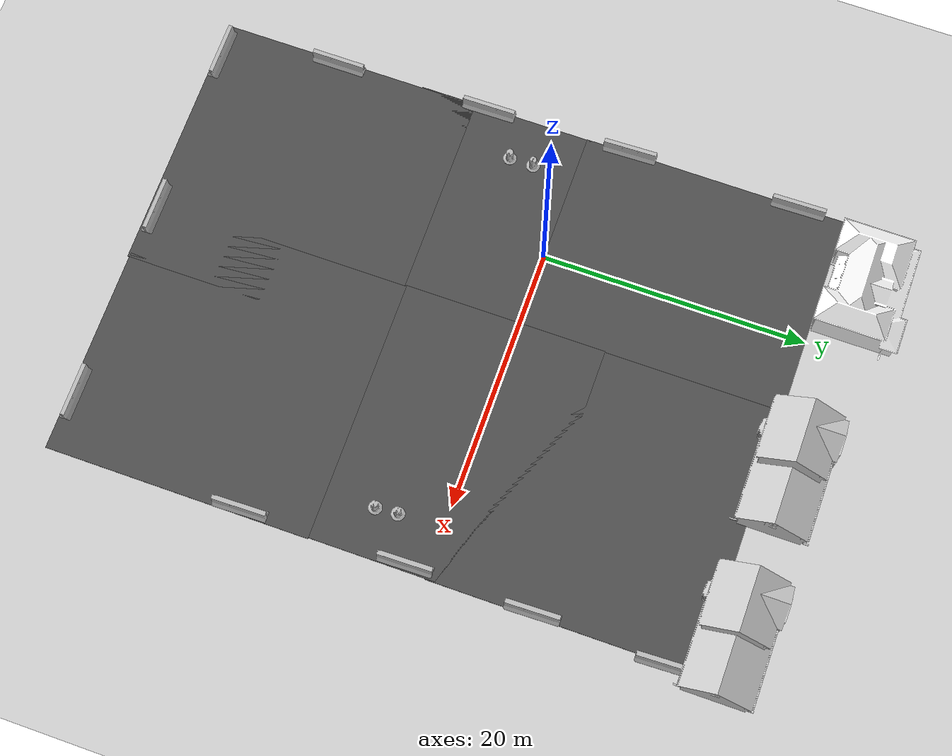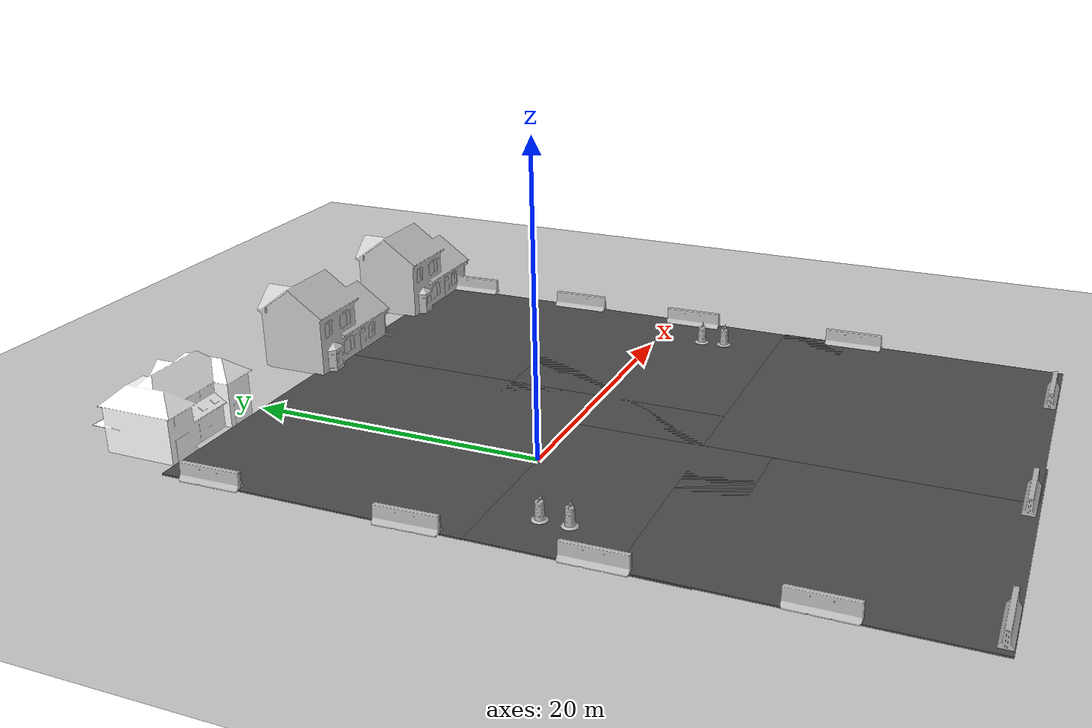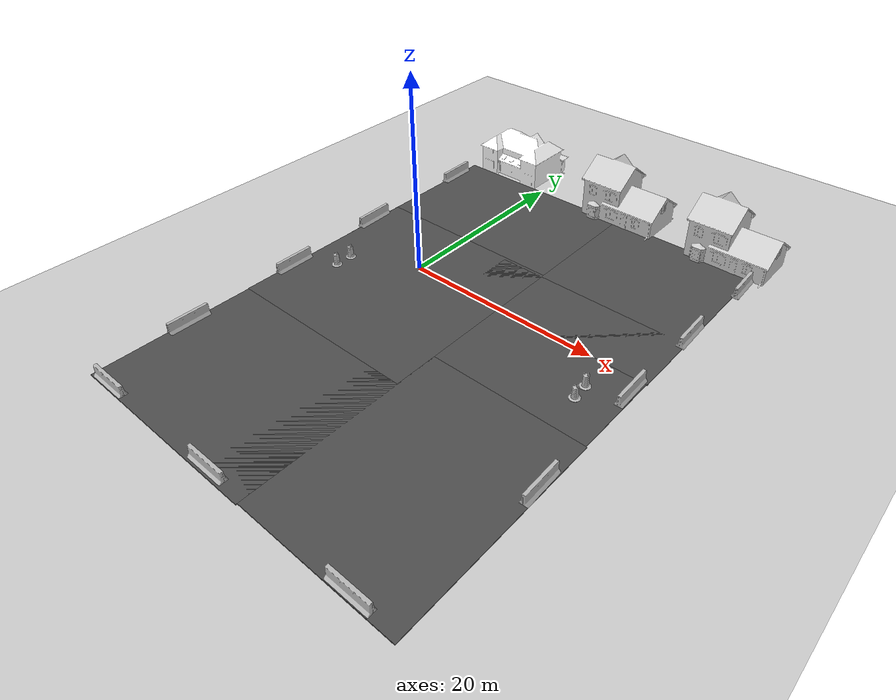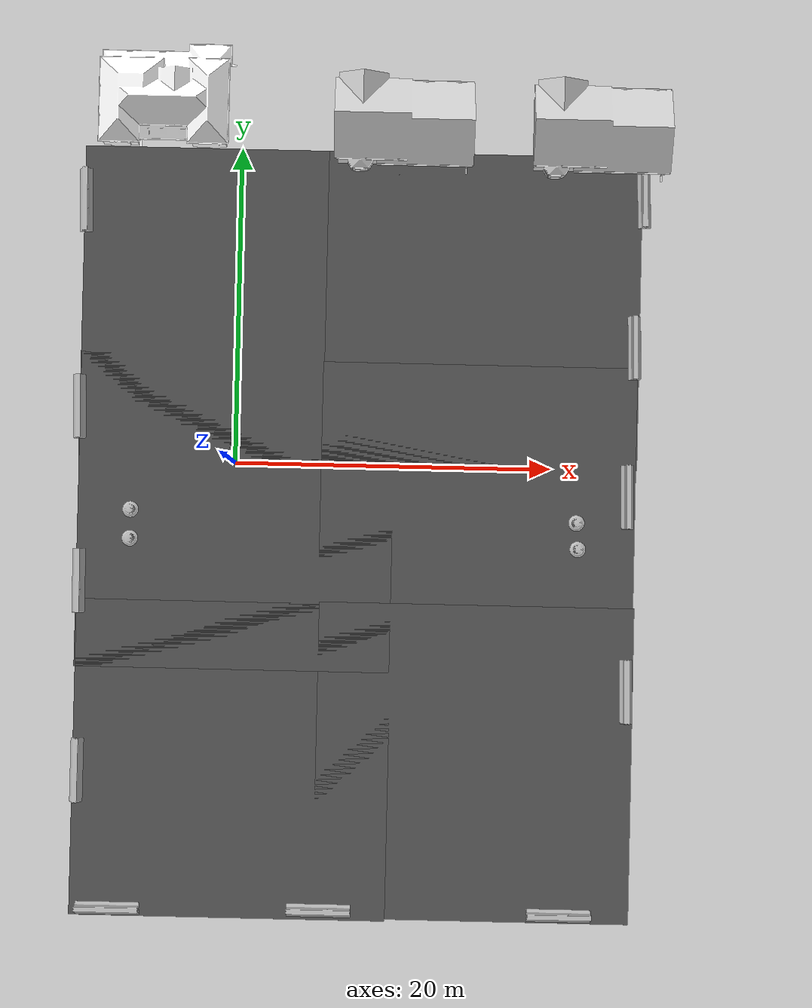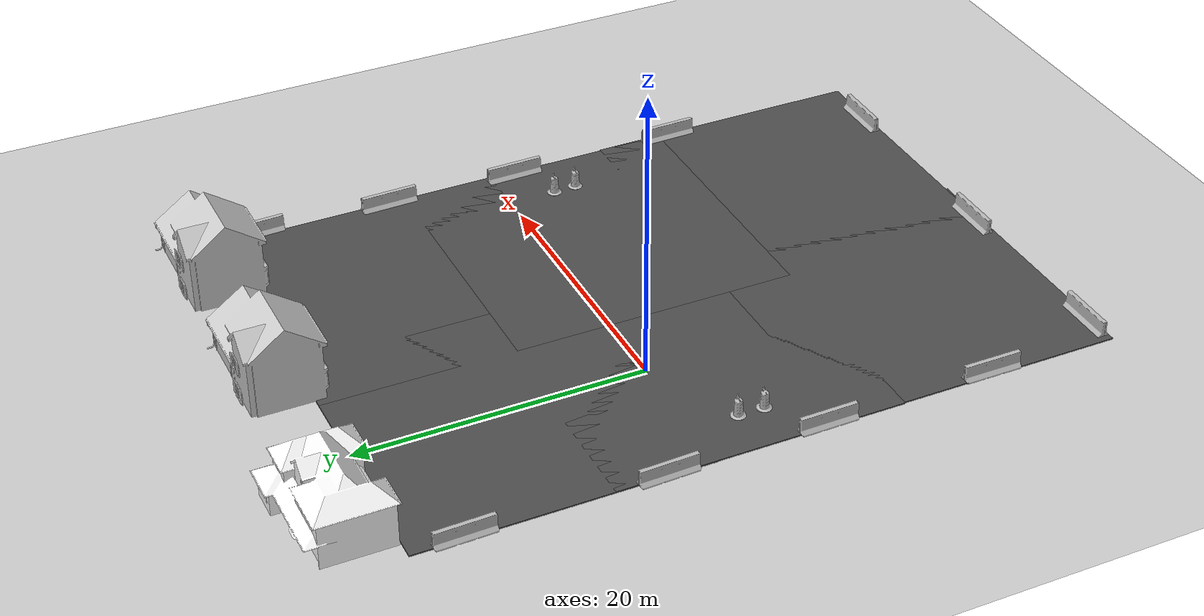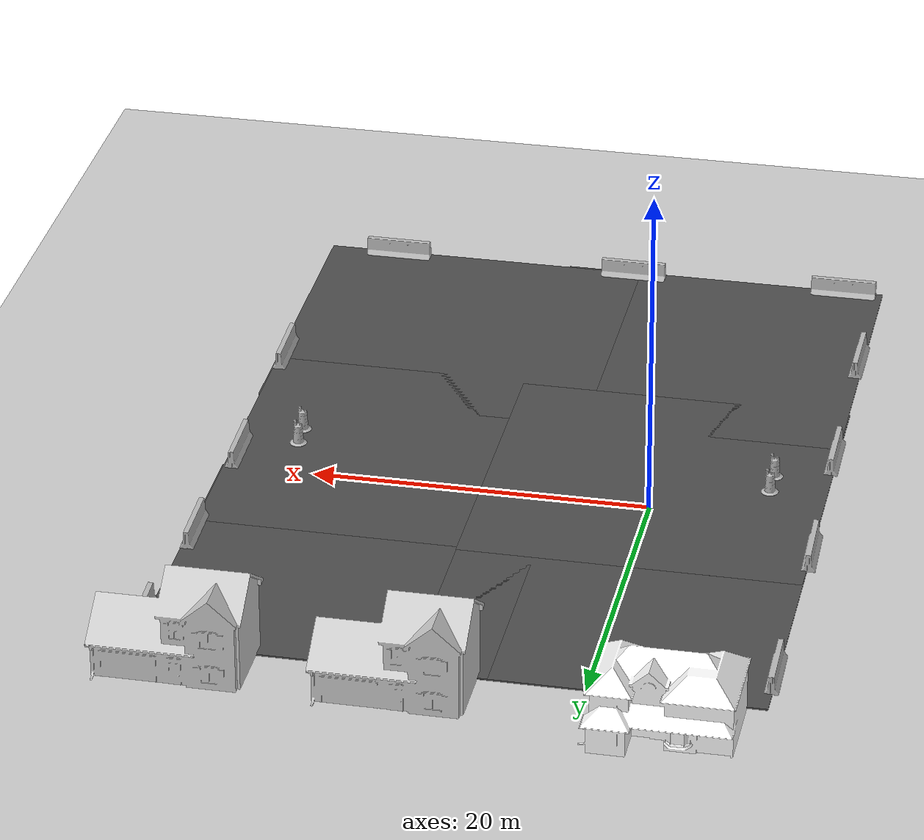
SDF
<sdf version="1.4">
 <world name="default">
  <model name="ground_plane">
   <static>1</static>
   <link name="link">
    <collision name="collision">
     <geometry><plane><normal>0 0 1</normal><size>100 100</size></plane></geometry>
     <surface><friction><ode><mu>100</mu><mu2>50</mu2></ode></friction></surface>
    </collision>
    <visual name="visual">
     <cast_shadows>0</cast_shadows>
     <geometry><plane><normal>0 0 1</normal><size>100 100</size></plane></geometry>
     <material>
      <script><uri>file://media/materials/scripts/gazebo.material</uri><name>Gazebo/Grey</name></script>
     </material>
    </visual>
    <velocity_decay><linear>0</linear><angular>0</angular></velocity_decay>
   </link>
  </model>
  <model name="asphalt_plane">
   <static>1</static>
   <link name="link">
    <collision name="collision"><geometry><box><size>20 20 0.1</size></box></geometry></collision>
    <visual name="visual">
     <cast_shadows>0</cast_shadows>
     <geometry><box><size>20 20 0.1</size></box></geometry>
     <material>
      <script>
       <uri>model://asphalt_plane/materials/scripts</uri>
       <uri>model://asphalt_plane/materials/textures</uri>
       <name>vrc/asphalt</name>
      </script>
     </material>
    </visual>
    <velocity_decay><linear>0</linear><angular>0</angular></velocity_decay>
   </link>
   <pose>0.030437 -3.13546 0 0 -0 0</pose>
  </model>
  <model name="jersey_barrier">
   <static>1</static>
   <link name="link">
    <visual name="visual">
     <geometry><mesh><uri>model://jersey_barrier/meshes/jersey_barrier.dae</uri></mesh></geometry>
    </visual>
    <collision name="upright">
     <pose>0 0 0.5715 0 -0 0</pose>
     <geometry><box><size>4.06542 0.3063 1.143</size></box></geometry>
    </collision>
    <collision name="base">
     <pose>0 0 0.032258 0 -0 0</pose>
     <geometry><box><size>4.06542 0.8107 0.064516</size></box></geometry>
    </collision>
    <collision name="base2">
     <pose>0 0 0.1 0 -0 0</pose>
     <geometry><box><size>4.06542 0.65 0.1</size></box></geometry>
    </collision>
    <collision name="base3">
     <pose>0 0 0.2 0 -0 0</pose>
     <geometry><box><size>4.06542 0.5 0.1</size></box></geometry>
    </collision>
    <collision name="left-angle">
     <pose>0 -0.224 0.2401 0.9 -0 0</pose>
     <geometry><box><size>4.06542 0.5 0.064516</size></box></geometry>
    </collision>
    <collision name="right-angle">
     <pose>0 0.224 0.2401 -0.9 0 0</pose>
     <geometry><box><size>4.06542 0.5 0.064516</size></box></geometry>
    </collision>
    <velocity_decay><linear>0</linear><angular>0</angular></velocity_decay>
   </link>
   <pose>21.0984 -28.2425 0 0 -0 0</pose>
  </model>
  <model name="jersey_barrier_0">
   <static>1</static>
   <link name="link">
    <visual name="visual">
     <geometry><mesh><uri>model://jersey_barrier/meshes/jersey_barrier.dae</uri></mesh></geometry>
    </visual>
    <collision name="upright">
     <pose>0 0 0.5715 0 -0 0</pose>
     <geometry><box><size>4.06542 0.3063 1.143</size></box></geometry>
    </collision>
    <collision name="base">
     <pose>0 0 0.032258 0 -0 0</pose>
     <geometry><box><size>4.06542 0.8107 0.064516</size></box></geometry>
    </collision>
    <collision name="base2">
     <pose>0 0 0.1 0 -0 0</pose>
     <geometry><box><size>4.06542 0.65 0.1</size></box></geometry>
    </collision>
    <collision name="base3">
     <pose>0 0 0.2 0 -0 0</pose>
     <geometry><box><size>4.06542 0.5 0.1</size></box></geometry>
    </collision>
    <collision name="left-angle">
     <pose>0 -0.224 0.2401 0.9 -0 0</pose>
     <geometry><box><size>4.06542 0.5 0.064516</size></box></geometry>
    </collision>
    <collision name="right-angle">
     <pose>0 0.224 0.2401 -0.9 0 0</pose>
     <geometry><box><size>4.06542 0.5 0.064516</size></box></geometry>
    </collision>
    <velocity_decay><linear>0</linear><angular>0</angular></velocity_decay>
   </link>
   <pose>5.90195 -28.2526 0 0 -0 0</pose>
  </model>
  <model name="jersey_barrier_1">
   <static>1</static>
   <link name="link">
    <visual name="visual">
     <geometry><mesh><uri>model://jersey_barrier/meshes/jersey_barrier.dae</uri></mesh></geometry>
    </visual>
    <collision name="upright">
     <pose>0 0 0.5715 0 -0 0</pose>
     <geometry><box><size>4.06542 0.3063 1.143</size></box></geometry>
    </collision>
    <collision name="base">
     <pose>0 0 0.032258 0 -0 0</pose>
     <geometry><box><size>4.06542 0.8107 0.064516</size></box></geometry>
    </collision>
    <collision name="base2">
     <pose>0 0 0.1 0 -0 0</pose>
     <geometry><box><size>4.06542 0.65 0.1</size></box></geometry>
    </collision>
    <collision name="base3">
     <pose>0 0 0.2 0 -0 0</pose>
     <geometry><box><size>4.06542 0.5 0.1</size></box></geometry>
    </collision>
    <collision name="left-angle">
     <pose>0 -0.224 0.2401 0.9 -0 0</pose>
     <geometry><box><size>4.06542 0.5 0.064516</size></box></geometry>
    </collision>
    <collision name="right-angle">
     <pose>0 0.224 0.2401 -0.9 0 0</pose>
     <geometry><box><size>4.06542 0.5 0.064516</size></box></geometry>
    </collision>
    <velocity_decay><linear>0</linear><angular>0</angular></velocity_decay>
   </link>
   <pose>-7.47394 -28.3953 0 0 -0 0</pose>
  </model>
  <model name="jersey_barrier_2">
   <static>1</static>
   <link name="link">
    <visual name="visual">
     <geometry><mesh><uri>model://jersey_barrier/meshes/jersey_barrier.dae</uri></mesh></geometry>
    </visual>
    <collision name="upright">
     <pose>0 0 0.5715 0 -0 0</pose>
     <geometry><box><size>4.06542 0.3063 1.143</size></box></geometry>
    </collision>
    <collision name="base">
     <pose>0 0 0.032258 0 -0 0</pose>
     <geometry><box><size>4.06542 0.8107 0.064516</size></box></geometry>
    </collision>
    <collision name="base2">
     <pose>0 0 0.1 0 -0 0</pose>
     <geometry><box><size>4.06542 0.65 0.1</size></box></geometry>
    </collision>
    <collision name="base3">
     <pose>0 0 0.2 0 -0 0</pose>
     <geometry><box><size>4.06542 0.5 0.1</size></box></geometry>
    </collision>
    <collision name="left-angle">
     <pose>0 -0.224 0.2401 0.9 -0 0</pose>
     <geometry><box><size>4.06542 0.5 0.064516</size></box></geometry>
    </collision>
    <collision name="right-angle">
     <pose>0 0.224 0.2401 -0.9 0 0</pose>
     <geometry><box><size>4.06542 0.5 0.064516</size></box></geometry>
    </collision>
    <velocity_decay><linear>0</linear><angular>0</angular></velocity_decay>
   </link>
   <pose>-9.62184 -19.7051 0 0 0 -1.57192</pose>
  </model>
  <model name="jersey_barrier_3">
   <static>1</static>
   <link name="link">
    <visual name="visual">
     <geometry><mesh><uri>model://jersey_barrier/meshes/jersey_barrier.dae</uri></mesh></geometry>
    </visual>
    <collision name="upright">
     <pose>0 0 0.5715 0 -0 0</pose>
     <geometry><box><size>4.06542 0.3063 1.143</size></box></geometry>
    </collision>
    <collision name="base">
     <pose>0 0 0.032258 0 -0 0</pose>
     <geometry><box><size>4.06542 0.8107 0.064516</size></box></geometry>
    </collision>
    <collision name="base2">
     <pose>0 0 0.1 0 -0 0</pose>
     <geometry><box><size>4.06542 0.65 0.1</size></box></geometry>
    </collision>
    <collision name="base3">
     <pose>0 0 0.2 0 -0 0</pose>
     <geometry><box><size>4.06542 0.5 0.1</size></box></geometry>
    </collision>
    <collision name="left-angle">
     <pose>0 -0.224 0.2401 0.9 -0 0</pose>
     <geometry><box><size>4.06542 0.5 0.064516</size></box></geometry>
    </collision>
    <collision name="right-angle">
     <pose>0 0.224 0.2401 -0.9 0 0</pose>
     <geometry><box><size>4.06542 0.5 0.064516</size></box></geometry>
    </collision>
    <velocity_decay><linear>0</linear><angular>0</angular></velocity_decay>
   </link>
   <pose>25.0903 -13.975 0 0 0 -1.55011</pose>
  </model>
  <model name="jersey_barrier_4">
   <static>1</static>
   <link name="link">
    <visual name="visual">
     <geometry><mesh><uri>model://jersey_barrier/meshes/jersey_barrier.dae</uri></mesh></geometry>
    </visual>
    <collision name="upright">
     <pose>0 0 0.5715 0 -0 0</pose>
     <geometry><box><size>4.06542 0.3063 1.143</size></box></geometry>
    </collision>
    <collision name="base">
     <pose>0 0 0.032258 0 -0 0</pose>
     <geometry><box><size>4.06542 0.8107 0.064516</size></box></geometry>
    </collision>
    <collision name="base2">
     <pose>0 0 0.1 0 -0 0</pose>
     <geometry><box><size>4.06542 0.65 0.1</size></box></geometry>
    </collision>
    <collision name="base3">
     <pose>0 0 0.2 0 -0 0</pose>
     <geometry><box><size>4.06542 0.5 0.1</size></box></geometry>
    </collision>
    <collision name="left-angle">
     <pose>0 -0.224 0.2401 0.9 -0 0</pose>
     <geometry><box><size>4.06542 0.5 0.064516</size></box></geometry>
    </collision>
    <collision name="right-angle">
     <pose>0 0.224 0.2401 -0.9 0 0</pose>
     <geometry><box><size>4.06542 0.5 0.064516</size></box></geometry>
    </collision>
    <velocity_decay><linear>0</linear><angular>0</angular></velocity_decay>
   </link>
   <pose>-9.79209 -7.708 0 0 0 -1.56057</pose>
  </model>
  <model name="jersey_barrier_5">
   <static>1</static>
   <link name="link">
    <visual name="visual">
     <geometry><mesh><uri>model://jersey_barrier/meshes/jersey_barrier.dae</uri></mesh></geometry>
    </visual>
    <collision name="upright">
     <pose>0 0 0.5715 0 -0 0</pose>
     <geometry><box><size>4.06542 0.3063 1.143</size></box></geometry>
    </collision>
    <collision name="base">
     <pose>0 0 0.032258 0 -0 0</pose>
     <geometry><box><size>4.06542 0.8107 0.064516</size></box></geometry>
    </collision>
    <collision name="base2">
     <pose>0 0 0.1 0 -0 0</pose>
     <geometry><box><size>4.06542 0.65 0.1</size></box></geometry>
    </collision>
    <collision name="base3">
     <pose>0 0 0.2 0 -0 0</pose>
     <geometry><box><size>4.06542 0.5 0.1</size></box></geometry>
    </collision>
    <collision name="left-angle">
     <pose>0 -0.224 0.2401 0.9 -0 0</pose>
     <geometry><box><size>4.06542 0.5 0.064516</size></box></geometry>
    </collision>
    <collision name="right-angle">
     <pose>0 0.224 0.2401 -0.9 0 0</pose>
     <geometry><box><size>4.06542 0.5 0.064516</size></box></geometry>
    </collision>
    <velocity_decay><linear>0</linear><angular>0</angular></velocity_decay>
   </link>
   <pose>24.9445 -1.63963 0 0 0 -1.55025</pose>
  </model>
  <model name="asphalt_plane_0">
   <static>1</static>
   <link name="link">
    <collision name="collision"><geometry><box><size>20 20 0.1</size></box></geometry></collision>
    <visual name="visual">
     <cast_shadows>0</cast_shadows>
     <geometry><box><size>20 20 0.1</size></box></geometry>
     <material>
      <script>
       <uri>model://asphalt_plane/materials/scripts</uri>
       <uri>model://asphalt_plane/materials/textures</uri>
       <name>vrc/asphalt</name>
      </script>
     </material>
    </visual>
    <velocity_decay><linear>0</linear><angular>0</angular></velocity_decay>
   </link>
   <pose>0 10 0 0 -0 0</pose>
  </model>
  <model name="jersey_barrier_8">
   <static>1</static>
   <link name="link">
    <visual name="visual">
     <geometry><mesh><uri>model://jersey_barrier/meshes/jersey_barrier.dae</uri></mesh></geometry>
    </visual>
    <collision name="upright">
     <pose>0 0 0.5715 0 -0 0</pose>
     <geometry><box><size>4.06542 0.3063 1.143</size></box></geometry>
    </collision>
    <collision name="base">
     <pose>0 0 0.032258 0 -0 0</pose>
     <geometry><box><size>4.06542 0.8107 0.064516</size></box></geometry>
    </collision>
    <collision name="base2">
     <pose>0 0 0.1 0 -0 0</pose>
     <geometry><box><size>4.06542 0.65 0.1</size></box></geometry>
    </collision>
    <collision name="base3">
     <pose>0 0 0.2 0 -0 0</pose>
     <geometry><box><size>4.06542 0.5 0.1</size></box></geometry>
    </collision>
    <collision name="left-angle">
     <pose>0 -0.224 0.2401 0.9 -0 0</pose>
     <geometry><box><size>4.06542 0.5 0.064516</size></box></geometry>
    </collision>
    <collision name="right-angle">
     <pose>0 0.224 0.2401 -0.9 0 0</pose>
     <geometry><box><size>4.06542 0.5 0.064516</size></box></geometry>
    </collision>
    <velocity_decay><linear>0</linear><angular>0</angular></velocity_decay>
   </link>
   <pose>25.1873 7.83728 0 0 0 -1.5463</pose>
  </model>
  <model name="jersey_barrier_9">
   <static>1</static>
   <link name="link">
    <visual name="visual">
     <geometry><mesh><uri>model://jersey_barrier/meshes/jersey_barrier.dae</uri></mesh></geometry>
    </visual>
    <collision name="upright">
     <pose>0 0 0.5715 0 -0 0</pose>
     <geometry><box><size>4.06542 0.3063 1.143</size></box></geometry>
    </collision>
    <collision name="base">
     <pose>0 0 0.032258 0 -0 0</pose>
     <geometry><box><size>4.06542 0.8107 0.064516</size></box></geometry>
    </collision>
    <collision name="base2">
     <pose>0 0 0.1 0 -0 0</pose>
     <geometry><box><size>4.06542 0.65 0.1</size></box></geometry>
    </collision>
    <collision name="base3">
     <pose>0 0 0.2 0 -0 0</pose>
     <geometry><box><size>4.06542 0.5 0.1</size></box></geometry>
    </collision>
    <collision name="left-angle">
     <pose>0 -0.224 0.2401 0.9 -0 0</pose>
     <geometry><box><size>4.06542 0.5 0.064516</size></box></geometry>
    </collision>
    <collision name="right-angle">
     <pose>0 0.224 0.2401 -0.9 0 0</pose>
     <geometry><box><size>4.06542 0.5 0.064516</size></box></geometry>
    </collision>
    <velocity_decay><linear>0</linear><angular>0</angular></velocity_decay>
   </link>
   <pose>25.6023 17.5115 0 0 0 -1.53629</pose>
  </model>
  <model name="jersey_barrier_10">
   <static>1</static>
   <link name="link">
    <visual name="visual">
     <geometry><mesh><uri>model://jersey_barrier/meshes/jersey_barrier.dae</uri></mesh></geometry>
    </visual>
    <collision name="upright">
     <pose>0 0 0.5715 0 -0 0</pose>
     <geometry><box><size>4.06542 0.3063 1.143</size></box></geometry>
    </collision>
    <collision name="base">
     <pose>0 0 0.032258 0 -0 0</pose>
     <geometry><box><size>4.06542 0.8107 0.064516</size></box></geometry>
    </collision>
    <collision name="base2">
     <pose>0 0 0.1 0 -0 0</pose>
     <geometry><box><size>4.06542 0.65 0.1</size></box></geometry>
    </collision>
    <collision name="base3">
     <pose>0 0 0.2 0 -0 0</pose>
     <geometry><box><size>4.06542 0.5 0.1</size></box></geometry>
    </collision>
    <collision name="left-angle">
     <pose>0 -0.224 0.2401 0.9 -0 0</pose>
     <geometry><box><size>4.06542 0.5 0.064516</size></box></geometry>
    </collision>
    <collision name="right-angle">
     <pose>0 0.224 0.2401 -0.9 0 0</pose>
     <geometry><box><size>4.06542 0.5 0.064516</size></box></geometry>
    </collision>
    <velocity_decay><linear>0</linear><angular>0</angular></velocity_decay>
   </link>
   <pose>-10.0111 3.35383 0 0 0 -1.54096</pose>
  </model>
  <model name="jersey_barrier_11">
   <static>1</static>
   <link name="link">
    <visual name="visual">
     <geometry><mesh><uri>model://jersey_barrier/meshes/jersey_barrier.dae</uri></mesh></geometry>
    </visual>
    <collision name="upright">
     <pose>0 0 0.5715 0 -0 0</pose>
     <geometry><box><size>4.06542 0.3063 1.143</size></box></geometry>
    </collision>
    <collision name="base">
     <pose>0 0 0.032258 0 -0 0</pose>
     <geometry><box><size>4.06542 0.8107 0.064516</size></box></geometry>
    </collision>
    <collision name="base2">
     <pose>0 0 0.1 0 -0 0</pose>
     <geometry><box><size>4.06542 0.65 0.1</size></box></geometry>
    </collision>
    <collision name="base3">
     <pose>0 0 0.2 0 -0 0</pose>
     <geometry><box><size>4.06542 0.5 0.1</size></box></geometry>
    </collision>
    <collision name="left-angle">
     <pose>0 -0.224 0.2401 0.9 -0 0</pose>
     <geometry><box><size>4.06542 0.5 0.064516</size></box></geometry>
    </collision>
    <collision name="right-angle">
     <pose>0 0.224 0.2401 -0.9 0 0</pose>
     <geometry><box><size>4.06542 0.5 0.064516</size></box></geometry>
    </collision>
    <velocity_decay><linear>0</linear><angular>0</angular></velocity_decay>
   </link>
   <pose>-9.89857 16.4946 0 0 0 -1.55018</pose>
  </model>
  <model name="House 2">
   <static>1</static>
   <link name="link">
    <collision name="collision">
     <geometry><mesh><uri>model://house_2/meshes/house_2.dae</uri></mesh></geometry>
    </collision>
    <visual name="visual">
     <geometry><mesh><uri>model://house_2/meshes/house_2.dae</uri></mesh></geometry>
     <material>
      <script>
       <uri>model://house_2/materials/scripts</uri>
       <uri>model://house_2/materials/textures</uri>
       <uri>model://house_1/materials/textures</uri>
       <name>House_2/Diffuse</name>
      </script>
      <shader type="normal_map_object_space">
       <normal_map>model://house_1/materials/textures/House_1_Normal.png</normal_map>
      </shader>
     </material>
    </visual>
    <velocity_decay><linear>0</linear><angular>0</angular></velocity_decay>
   </link>
   <pose>-5.55865 22.5873 0 0 -0 0</pose>
  </model>
  <model name="House 3">
   <static>1</static>
   <link name="link">
    <collision name="collision">
     <geometry><mesh><uri>model://house_3/meshes/house_3.dae</uri></mesh></geometry>
    </collision>
    <visual name="visual">
     <geometry><mesh><uri>model://house_3/meshes/house_3.dae</uri></mesh></geometry>
     <material>
      <script>
       <uri>model://house_3/materials/scripts</uri>
       <uri>model://house_3/materials/textures</uri>
       <uri>model://house_1/materials/textures</uri>
       <name>House_3/Diffuse</name>
      </script>
      <shader type="normal_map_object_space">
       <normal_map>model://house_1/materials/textures/House_1_Normal.png</normal_map>
      </shader>
     </material>
    </visual>
    <velocity_decay><linear>0</linear><angular>0</angular></velocity_decay>
   </link>
   <pose>10.5708 21.6062 0 0 -0 0</pose>
  </model>
  <model name="Construction Barrel_2">
   <link name="link">
    <inertial>
     <pose>0 0 0.4 0 -0 0</pose>
     <mass>500</mass>
     <inertia><ixx>51.2096</ixx><iyy>51.2096</iyy><izz>25</izz><ixy>0</ixy><ixz>0</ixz><iyz>0</iyz></inertia>
    </inertial>
    <collision name="collision">
     <geometry><mesh><uri>model://construction_barrel/meshes/construction_barrel.dae</uri></mesh></geometry>
    </collision>
    <visual name="visual">
     <geometry><mesh><uri>model://construction_barrel/meshes/construction_barrel.dae</uri></mesh></geometry>
    </visual>
    <velocity_decay><linear>0</linear><angular>0</angular></velocity_decay>
   </link>
   <pose>-6.60955 -3.1216 0.049999 -1e-06 -3e-06 0.000218</pose>
   <static>0</static>
  </model>
  <model name="Construction Barrel_3">
   <link name="link">
    <inertial>
     <pose>0 0 0.4 0 -0 0</pose>
     <mass>500</mass>
     <inertia><ixx>51.2096</ixx><iyy>51.2096</iyy><izz>25</izz><ixy>0</ixy><ixz>0</ixz><iyz>0</iyz></inertia>
    </inertial>
    <collision name="collision">
     <geometry><mesh><uri>model://construction_barrel/meshes/construction_barrel.dae</uri></mesh></geometry>
    </collision>
    <visual name="visual">
     <geometry><mesh><uri>model://construction_barrel/meshes/construction_barrel.dae</uri></mesh></geometry>
    </visual>
    <velocity_decay><linear>0</linear><angular>0</angular></velocity_decay>
   </link>
   <pose>21.733 -3.37039 0.049999 3e-06 -1.03398e-25 0.000214</pose>
   <static>0</static>
  </model>
  <model name="asphalt_plane_1">
   <static>1</static>
   <link name="link">
    <collision name="collision"><geometry><box><size>20 20 0.1</size></box></geometry></collision>
    <visual name="visual">
     <cast_shadows>0</cast_shadows>
     <geometry><box><size>20 20 0.1</size></box></geometry>
     <material>
      <script>
       <uri>model://asphalt_plane/materials/scripts</uri>
       <uri>model://asphalt_plane/materials/textures</uri>
       <name>vrc/asphalt</name>
      </script>
     </material>
    </visual>
    <velocity_decay><linear>0</linear><angular>0</angular></velocity_decay>
   </link>
   <pose>15.4977 10 0 0 -0 0</pose>
  </model>
  <model name="asphalt_plane_2">
   <static>1</static>
   <link name="link">
    <collision name="collision"><geometry><box><size>20 20 0.1</size></box></geometry></collision>
    <visual name="visual">
     <cast_shadows>0</cast_shadows>
     <geometry><box><size>20 20 0.1</size></box></geometry>
     <material>
      <script>
       <uri>model://asphalt_plane/materials/scripts</uri>
       <uri>model://asphalt_plane/materials/textures</uri>
       <name>vrc/asphalt</name>
      </script>
     </material>
    </visual>
    <velocity_decay><linear>0</linear><angular>0</angular></velocity_decay>
   </link>
   <pose>0.098625 -18.8432 0 0 -0 0</pose>
  </model>
  <model name="asphalt_plane_3">
   <static>1</static>
   <link name="link">
    <collision name="collision"><geometry><box><size>20 20 0.1</size></box></geometry></collision>
    <visual name="visual">
     <cast_shadows>0</cast_shadows>
     <geometry><box><size>20 20 0.1</size></box></geometry>
     <material>
      <script>
       <uri>model://asphalt_plane/materials/scripts</uri>
       <uri>model://asphalt_plane/materials/textures</uri>
       <name>vrc/asphalt</name>
      </script>
     </material>
    </visual>
    <velocity_decay><linear>0</linear><angular>0</angular></velocity_decay>
   </link>
   <pose>15.5136 -18.7124 0 0 -0 0</pose>
  </model>
  <model name="asphalt_plane_4">
   <static>1</static>
   <link name="link">
    <collision name="collision"><geometry><box><size>20 20 0.1</size></box></geometry></collision>
    <visual name="visual">
     <cast_shadows>0</cast_shadows>
     <geometry><box><size>20 20 0.1</size></box></geometry>
     <material>
      <script>
       <uri>model://asphalt_plane/materials/scripts</uri>
       <uri>model://asphalt_plane/materials/textures</uri>
       <name>vrc/asphalt</name>
      </script>
     </material>
    </visual>
    <velocity_decay><linear>0</linear><angular>0</angular></velocity_decay>
   </link>
   <pose>15.4321 -3.44172 0 0 -0 0</pose>
  </model>
  <model name="House 3_0">
   <static>1</static>
   <link name="link">
    <collision name="collision">
     <geometry><mesh><uri>model://house_3/meshes/house_3.dae</uri></mesh></geometry>
    </collision>
    <visual name="visual">
     <geometry><mesh><uri>model://house_3/meshes/house_3.dae</uri></mesh></geometry>
     <material>
      <script>
       <uri>model://house_3/materials/scripts</uri>
       <uri>model://house_3/materials/textures</uri>
       <uri>model://house_1/materials/textures</uri>
       <name>House_3/Diffuse</name>
      </script>
      <shader type="normal_map_object_space">
       <normal_map>model://house_1/materials/textures/House_1_Normal.png</normal_map>
      </shader>
     </material>
    </visual>
    <velocity_decay><linear>0</linear><angular>0</angular></velocity_decay>
   </link>
   <pose>23 21.4174 0 0 -0 0</pose>
  </model>
  <model name="Construction Barrel">
   <link name="link">
    <inertial>
     <pose>0 0 0.4 0 -0 0</pose>
     <mass>500</mass>
     <inertia><ixx>51.2096</ixx><iyy>51.2096</iyy><izz>25</izz><ixy>0</ixy><ixz>0</ixz><iyz>0</iyz></inertia>
    </inertial>
    <collision name="collision">
     <geometry><mesh><uri>model://construction_barrel/meshes/construction_barrel.dae</uri></mesh></geometry>
    </collision>
    <visual name="visual">
     <geometry><mesh><uri>model://construction_barrel/meshes/construction_barrel.dae</uri></mesh></geometry>
    </visual>
    <velocity_decay><linear>0</linear><angular>0</angular></velocity_decay>
   </link>
   <pose>-6.61237 -4.95296 0.049999 -1e-06 -2e-06 3.1e-05</pose>
   <static>0</static>
  </model>
  <model name="Construction Barrel_0">
   <link name="link">
    <inertial>
     <pose>0 0 0.4 0 -0 0</pose>
     <mass>500</mass>
     <inertia><ixx>51.2096</ixx><iyy>51.2096</iyy><izz>25</izz><ixy>0</ixy><ixz>0</ixz><iyz>0</iyz></inertia>
    </inertial>
    <collision name="collision">
     <geometry><mesh><uri>model://construction_barrel/meshes/construction_barrel.dae</uri></mesh></geometry>
    </collision>
    <visual name="visual">
     <geometry><mesh><uri>model://construction_barrel/meshes/construction_barrel.dae</uri></mesh></geometry>
    </visual>
    <velocity_decay><linear>0</linear><angular>0</angular></velocity_decay>
   </link>
   <pose>21.8481 -5.03809 0.049999 -1e-06 -2e-06 2.6e-05</pose>
   <static>0</static>
  </model>
 </world>
</sdf>
